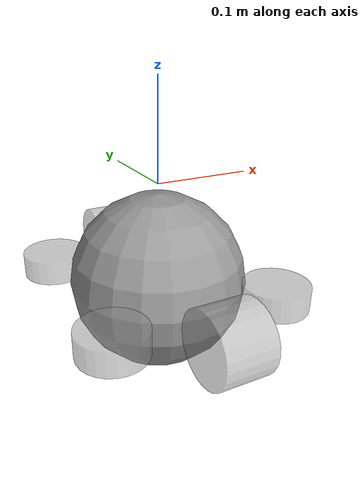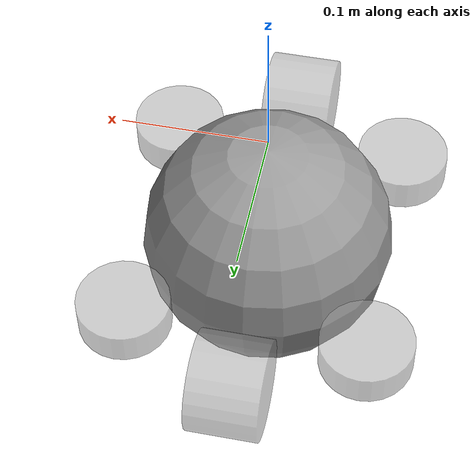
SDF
<?xml version="1.0" ?>
<sdf version='1.6'>
  <world name='default'>
    <light name='sun' type='directional'>
      <cast_shadows>1</cast_shadows>
      <pose frame=''>0 0 10 0 -0 0</pose>
      <diffuse>0.8 0.8 0.8 1</diffuse>
      <specular>0.2 0.2 0.2 1</specular>
      <attenuation>
        <range>1000</range>
        <constant>0.9</constant>
        <linear>0.01</linear>
        <quadratic>0.001</quadratic>
      </attenuation>
      <direction>-0.5 0.1 -0.9</direction>
    </light>
    <gravity>0 0 -9.8</gravity>
    <magnetic_field>6e-06 2.3e-05 -4.2e-05</magnetic_field>
    <atmosphere type='adiabatic'/>
    <physics name='default_physics' default='0' type='ode'>
      <max_step_size>0.001</max_step_size>
      <real_time_factor>1</real_time_factor>
      <real_time_update_rate>1000</real_time_update_rate>
    </physics>
    <scene>
      <ambient>0.4 0.4 0.4 1</ambient>
      <background>0.7 0.7 0.7 1</background>
      <shadows>1</shadows>
    </scene>
    <wind/>
    <spherical_coordinates>
      <surface_model>EARTH_WGS84</surface_model>
      <latitude_deg>0</latitude_deg>
      <longitude_deg>0</longitude_deg>
      <elevation>0</elevation>
      <heading_deg>0</heading_deg>
    </spherical_coordinates>
    <include>
      <uri>model://MickBot</uri>
      <pose>0 0 -0.1 0 0 0</pose>
    </include>
  </world>
</sdf>

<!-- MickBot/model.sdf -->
<sdf version='1.6'>
  <model name='MickBot'>
    <link name='body'>
      <inertial>
        <mass>3.05363</mass>
        <inertia>
          <ixx>0.00989375</ixx>
          <ixy>0</ixy>
          <ixz>0</ixz>
          <iyy>0.00989375</iyy>
          <iyz>0</iyz>
          <izz>0.00989375</izz>
        </inertia>
        <pose frame=''>0 0 0 0 -0 0</pose>
      </inertial>
      <pose frame=''>0 0 0 0 -0 0</pose>
      <gravity>1</gravity>
      <self_collide>0</self_collide>
      <kinematic>0</kinematic>
      <enable_wind>0</enable_wind>
      <sensor name='imu_sensor' type='imu'>
        <pose frame=''>0 0 0 0 -0 0</pose>
        <always_on>1</always_on>
        <update_rate>1000</update_rate>
        <imu/>
      </sensor>
      <visual name='body'>
        <pose frame=''>0 0 0 0 -0 0</pose>
        <geometry>
          <sphere>
            <radius>0.09</radius>
          </sphere>
        </geometry>
        <material>
          <lighting>1</lighting>
          <script>
            <uri>file://media/materials/scripts/gazebo.material</uri>
            <name>Gazebo/Grey</name>
          </script>
          <shader type='pixel'>
            <normal_map>__default__</normal_map>
          </shader>
          <ambient>0.3 0.3 0.3 1</ambient>
          <diffuse>0.7 0.7 0.7 1</diffuse>
          <specular>0.01 0.01 0.01 1</specular>
          <emissive>0 0 0 1</emissive>
        </material>
        <transparency>0</transparency>
        <cast_shadows>1</cast_shadows>
      </visual>
      <collision name='body'>
        <laser_retro>0</laser_retro>
        <max_contacts>10</max_contacts>
        <pose frame=''>0 0 0 0 -0 0</pose>
        <geometry>
          <sphere>
            <radius>0.09</radius>
          </sphere>
        </geometry>
        <surface>
          <friction>
            <ode>
              <mu>1</mu>
              <mu2>1</mu2>
              <fdir1>0 0 0</fdir1>
              <slip1>0</slip1>
              <slip2>0</slip2>
            </ode>
            <torsional>
              <coefficient>1</coefficient>
              <patch_radius>0</patch_radius>
              <surface_radius>0</surface_radius>
              <use_patch_radius>1</use_patch_radius>
              <ode>
                <slip>0</slip>
              </ode>
            </torsional>
          </friction>
          <bounce>
            <restitution_coefficient>0</restitution_coefficient>
            <threshold>1e+06</threshold>
          </bounce>
          <contact>
            <collide_without_contact>0</collide_without_contact>
            <collide_without_contact_bitmask>1</collide_without_contact_bitmask>
            <collide_bitmask>1</collide_bitmask>
            <ode>
              <soft_cfm>0</soft_cfm>
              <soft_erp>0.2</soft_erp>
              <kp>1e+13</kp>
              <kd>1</kd>
              <max_vel>0.01</max_vel>
              <min_depth>0</min_depth>
            </ode>
            <bullet>
              <split_impulse>1</split_impulse>
              <split_impulse_penetration_threshold>-0.01</split_impulse_penetration_threshold>
              <soft_cfm>0</soft_cfm>
              <soft_erp>0.2</soft_erp>
              <kp>1e+13</kp>
              <kd>1</kd>
            </bullet>
          </contact>
        </surface>
      </collision>
    </link>
    <link name='front_left_vertical_motor'>
      <self_collide>0</self_collide>
      <inertial>
        <pose frame=''>0 0 0 0 -0 0</pose>
        <inertia>
          <ixx>2.774e-05</ixx>
          <ixy>0</ixy>
          <ixz>0</ixz>
          <iyy>2.774e-05</iyy>
          <iyz>0</iyz>
          <izz>4.657e-05</izz>
        </inertia>
        <mass>0.0855299</mass>
      </inertial>
      <enable_wind>0</enable_wind>
      <kinematic>0</kinematic>
      <pose frame=''>0.085 0.085 0 0 -0 0</pose>
      <gravity>1</gravity>
      <visual name='front_left_vertical_motor'>
        <pose frame=''>0 0 0 0 -0 0</pose>
        <geometry>
          <cylinder>
            <radius>0.033</radius>
            <length>0.025</length>
          </cylinder>
        </geometry>
        <material>
          <lighting>1</lighting>
          <script>
            <uri>file://media/materials/scripts/gazebo.material</uri>
            <name>Gazebo/Grey</name>
          </script>
          <shader type='pixel'>
            <normal_map>__default__</normal_map>
          </shader>
          <ambient>0.3 0.3 0.3 1</ambient>
          <diffuse>0.7 0.7 0.7 1</diffuse>
          <specular>0.01 0.01 0.01 1</specular>
          <emissive>0 0 0 1</emissive>
        </material>
        <transparency>0.5</transparency>
        <cast_shadows>1</cast_shadows>
      </visual>
      <collision name='front_left_vertical_motor'>
        <laser_retro>0</laser_retro>
        <max_contacts>10</max_contacts>
        <pose frame=''>0 0 0 0 -0 0</pose>
        <geometry>
          <cylinder>
            <radius>0.033</radius>
            <length>0.025</length>
          </cylinder>
        </geometry>
        <surface>
          <friction>
            <ode>
              <mu>1</mu>
              <mu2>1</mu2>
              <fdir1>0 0 0</fdir1>
              <slip1>0</slip1>
              <slip2>0</slip2>
            </ode>
            <torsional>
              <coefficient>1</coefficient>
              <patch_radius>0</patch_radius>
              <surface_radius>0</surface_radius>
              <use_patch_radius>1</use_patch_radius>
              <ode>
                <slip>0</slip>
              </ode>
            </torsional>
          </friction>
          <bounce>
            <restitution_coefficient>0</restitution_coefficient>
            <threshold>1e+06</threshold>
          </bounce>
          <contact>
            <collide_without_contact>0</collide_without_contact>
            <collide_without_contact_bitmask>1</collide_without_contact_bitmask>
            <collide_bitmask>1</collide_bitmask>
            <ode>
              <soft_cfm>0</soft_cfm>
              <soft_erp>0.2</soft_erp>
              <kp>1e+13</kp>
              <kd>1</kd>
              <max_vel>0.01</max_vel>
              <min_depth>0</min_depth>
            </ode>
            <bullet>
              <split_impulse>1</split_impulse>
              <split_impulse_penetration_threshold>-0.01</split_impulse_penetration_threshold>
              <soft_cfm>0</soft_cfm>
              <soft_erp>0.2</soft_erp>
              <kp>1e+13</kp>
              <kd>1</kd>
            </bullet>
          </contact>
        </surface>
      </collision>
    </link>
    <link name='front_right_vertical_motor'>
      <self_collide>0</self_collide>
      <inertial>
        <pose frame=''>0 0 0 0 -0 0</pose>
        <inertia>
          <ixx>2.774e-05</ixx>
          <ixy>0</ixy>
          <ixz>0</ixz>
          <iyy>2.774e-05</iyy>
          <iyz>0</iyz>
          <izz>4.657e-05</izz>
        </inertia>
        <mass>0.0855299</mass>
      </inertial>
      <enable_wind>0</enable_wind>
      <kinematic>0</kinematic>
      <pose frame=''>0.085 -0.085 0 0 -0 0</pose>
      <gravity>1</gravity>
      <visual name='front_right_vertical_motor'>
        <pose frame=''>0 0 0 0 -0 0</pose>
        <geometry>
          <cylinder>
            <radius>0.033</radius>
            <length>0.025</length>
          </cylinder>
        </geometry>
        <material>
          <lighting>1</lighting>
          <script>
            <uri>file://media/materials/scripts/gazebo.material</uri>
            <name>Gazebo/Grey</name>
          </script>
          <shader type='pixel'>
            <normal_map>__default__</normal_map>
          </shader>
          <ambient>0.3 0.3 0.3 1</ambient>
          <diffuse>0.7 0.7 0.7 1</diffuse>
          <specular>0.01 0.01 0.01 1</specular>
          <emissive>0 0 0 1</emissive>
        </material>
        <transparency>0.5</transparency>
        <cast_shadows>1</cast_shadows>
      </visual>
      <collision name='front_right_vertical_motor'>
        <laser_retro>0</laser_retro>
        <max_contacts>10</max_contacts>
        <pose frame=''>0 0 0 0 -0 0</pose>
        <geometry>
          <cylinder>
            <radius>0.033</radius>
            <length>0.025</length>
          </cylinder>
        </geometry>
        <surface>
          <friction>
            <ode>
              <mu>1</mu>
              <mu2>1</mu2>
              <fdir1>0 0 0</fdir1>
              <slip1>0</slip1>
              <slip2>0</slip2>
            </ode>
            <torsional>
              <coefficient>1</coefficient>
              <patch_radius>0</patch_radius>
              <surface_radius>0</surface_radius>
              <use_patch_radius>1</use_patch_radius>
              <ode>
                <slip>0</slip>
              </ode>
            </torsional>
          </friction>
          <bounce>
            <restitution_coefficient>0</restitution_coefficient>
            <threshold>1e+06</threshold>
          </bounce>
          <contact>
            <collide_without_contact>0</collide_without_contact>
            <collide_without_contact_bitmask>1</collide_without_contact_bitmask>
            <collide_bitmask>1</collide_bitmask>
            <ode>
              <soft_cfm>0</soft_cfm>
              <soft_erp>0.2</soft_erp>
              <kp>1e+13</kp>
              <kd>1</kd>
              <max_vel>0.01</max_vel>
              <min_depth>0</min_depth>
            </ode>
            <bullet>
              <split_impulse>1</split_impulse>
              <split_impulse_penetration_threshold>-0.01</split_impulse_penetration_threshold>
              <soft_cfm>0</soft_cfm>
              <soft_erp>0.2</soft_erp>
              <kp>1e+13</kp>
              <kd>1</kd>
            </bullet>
          </contact>
        </surface>
      </collision>
    </link>
    <link name='left_horizontal_motor'>
      <self_collide>0</self_collide>
      <inertial>
        <pose frame=''>0 0 0 0 -0 0</pose>
        <inertia>
          <ixx>9.902e-05</ixx>
          <ixy>0</ixy>
          <ixz>0</ixz>
          <iyy>9.902e-05</iyy>
          <iyz>0</iyz>
          <izz>0.00011786</izz>
        </inertia>
        <mass>0.192423</mass>
      </inertial>
      <enable_wind>0</enable_wind>
      <kinematic>0</kinematic>
      <pose frame=''>0 0.13 0 0 1.57079 0</pose>
      <gravity>1</gravity>
      <visual name='left_horizontal_motor'>
        <pose frame=''>0 0 0 0 -0 0</pose>
        <geometry>
          <cylinder>
            <radius>0.035</radius>
            <length>0.05</length>
          </cylinder>
        </geometry>
        <material>
          <lighting>1</lighting>
          <script>
            <uri>file://media/materials/scripts/gazebo.material</uri>
            <name>Gazebo/Grey</name>
          </script>
          <shader type='pixel'>
            <normal_map>__default__</normal_map>
          </shader>
          <ambient>0.3 0.3 0.3 1</ambient>
          <diffuse>0.7 0.7 0.7 1</diffuse>
          <specular>0.01 0.01 0.01 1</specular>
          <emissive>0 0 0 1</emissive>
        </material>
        <transparency>0.5</transparency>
        <cast_shadows>1</cast_shadows>
      </visual>
      <collision name='left_horizontal_motor'>
        <laser_retro>0</laser_retro>
        <max_contacts>10</max_contacts>
        <pose frame=''>0 0 0 0 -0 0</pose>
        <geometry>
          <cylinder>
            <radius>0.035</radius>
            <length>0.05</length>
          </cylinder>
        </geometry>
        <surface>
          <friction>
            <ode>
              <mu>1</mu>
              <mu2>1</mu2>
              <fdir1>0 0 0</fdir1>
              <slip1>0</slip1>
              <slip2>0</slip2>
            </ode>
            <torsional>
              <coefficient>1</coefficient>
              <patch_radius>0</patch_radius>
              <surface_radius>0</surface_radius>
              <use_patch_radius>1</use_patch_radius>
              <ode>
                <slip>0</slip>
              </ode>
            </torsional>
          </friction>
          <bounce>
            <restitution_coefficient>0</restitution_coefficient>
            <threshold>1e+06</threshold>
          </bounce>
          <contact>
            <collide_without_contact>0</collide_without_contact>
            <collide_without_contact_bitmask>1</collide_without_contact_bitmask>
            <collide_bitmask>1</collide_bitmask>
            <ode>
              <soft_cfm>0</soft_cfm>
              <soft_erp>0.2</soft_erp>
              <kp>1e+13</kp>
              <kd>1</kd>
              <max_vel>0.01</max_vel>
              <min_depth>0</min_depth>
            </ode>
            <bullet>
              <split_impulse>1</split_impulse>
              <split_impulse_penetration_threshold>-0.01</split_impulse_penetration_threshold>
              <soft_cfm>0</soft_cfm>
              <soft_erp>0.2</soft_erp>
              <kp>1e+13</kp>
              <kd>1</kd>
            </bullet>
          </contact>
        </surface>
      </collision>
    </link>
    <link name='rear_left_vertical_motor'>
      <self_collide>0</self_collide>
      <inertial>
        <pose frame=''>0 0 0 0 -0 0</pose>
        <inertia>
          <ixx>2.774e-05</ixx>
          <ixy>0</ixy>
          <ixz>0</ixz>
          <iyy>2.774e-05</iyy>
          <iyz>0</iyz>
          <izz>4.657e-05</izz>
        </inertia>
        <mass>0.0855299</mass>
      </inertial>
      <enable_wind>0</enable_wind>
      <kinematic>0</kinematic>
      <pose frame=''>-0.085 0.085 0 0 -0 0</pose>
      <gravity>1</gravity>
      <visual name='rear_left_vertical_motor'>
        <pose frame=''>0 0 0 0 -0 0</pose>
        <geometry>
          <cylinder>
            <radius>0.033</radius>
            <length>0.025</length>
          </cylinder>
        </geometry>
        <material>
          <lighting>1</lighting>
          <script>
            <uri>file://media/materials/scripts/gazebo.material</uri>
            <name>Gazebo/Grey</name>
          </script>
          <shader type='pixel'>
            <normal_map>__default__</normal_map>
          </shader>
          <ambient>0.3 0.3 0.3 1</ambient>
          <diffuse>0.7 0.7 0.7 1</diffuse>
          <specular>0.01 0.01 0.01 1</specular>
          <emissive>0 0 0 1</emissive>
        </material>
        <transparency>0.5</transparency>
        <cast_shadows>1</cast_shadows>
      </visual>
      <collision name='rear_left_vertical_motor'>
        <laser_retro>0</laser_retro>
        <max_contacts>10</max_contacts>
        <pose frame=''>0 0 0 0 -0 0</pose>
        <geometry>
          <cylinder>
            <radius>0.033</radius>
            <length>0.025</length>
          </cylinder>
        </geometry>
        <surface>
          <friction>
            <ode>
              <mu>1</mu>
              <mu2>1</mu2>
              <fdir1>0 0 0</fdir1>
              <slip1>0</slip1>
              <slip2>0</slip2>
            </ode>
            <torsional>
              <coefficient>1</coefficient>
              <patch_radius>0</patch_radius>
              <surface_radius>0</surface_radius>
              <use_patch_radius>1</use_patch_radius>
              <ode>
                <slip>0</slip>
              </ode>
            </torsional>
          </friction>
          <bounce>
            <restitution_coefficient>0</restitution_coefficient>
            <threshold>1e+06</threshold>
          </bounce>
          <contact>
            <collide_without_contact>0</collide_without_contact>
            <collide_without_contact_bitmask>1</collide_without_contact_bitmask>
            <collide_bitmask>1</collide_bitmask>
            <ode>
              <soft_cfm>0</soft_cfm>
              <soft_erp>0.2</soft_erp>
              <kp>1e+13</kp>
              <kd>1</kd>
              <max_vel>0.01</max_vel>
              <min_depth>0</min_depth>
            </ode>
            <bullet>
              <split_impulse>1</split_impulse>
              <split_impulse_penetration_threshold>-0.01</split_impulse_penetration_threshold>
              <soft_cfm>0</soft_cfm>
              <soft_erp>0.2</soft_erp>
              <kp>1e+13</kp>
              <kd>1</kd>
            </bullet>
          </contact>
        </surface>
      </collision>
    </link>
    <link name='rear_right_vertical_motor'>
      <self_collide>0</self_collide>
      <inertial>
        <pose frame=''>0 0 0 0 -0 0</pose>
        <inertia>
          <ixx>2.774e-05</ixx>
          <ixy>0</ixy>
          <ixz>0</ixz>
          <iyy>2.774e-05</iyy>
          <iyz>0</iyz>
          <izz>4.657e-05</izz>
        </inertia>
        <mass>0.0855299</mass>
      </inertial>
      <enable_wind>0</enable_wind>
      <kinematic>0</kinematic>
      <pose frame=''>-0.085 -0.085 0 0 -0 0</pose>
      <gravity>1</gravity>
      <visual name='rear_right_vertical_motor'>
        <pose frame=''>0 0 0 0 -0 0</pose>
        <geometry>
          <cylinder>
            <radius>0.033</radius>
            <length>0.025</length>
          </cylinder>
        </geometry>
        <material>
          <lighting>1</lighting>
          <script>
            <uri>file://media/materials/scripts/gazebo.material</uri>
            <name>Gazebo/Grey</name>
          </script>
          <shader type='pixel'>
            <normal_map>__default__</normal_map>
          </shader>
          <ambient>0.3 0.3 0.3 1</ambient>
          <diffuse>0.7 0.7 0.7 1</diffuse>
          <specular>0.01 0.01 0.01 1</specular>
          <emissive>0 0 0 1</emissive>
        </material>
        <transparency>0.5</transparency>
        <cast_shadows>1</cast_shadows>
      </visual>
      <collision name='rear_right_vertical_motor'>
        <laser_retro>0</laser_retro>
        <max_contacts>10</max_contacts>
        <pose frame=''>0 0 0 0 -0 0</pose>
        <geometry>
          <cylinder>
            <radius>0.033</radius>
            <length>0.025</length>
          </cylinder>
        </geometry>
        <surface>
          <friction>
            <ode>
              <mu>1</mu>
              <mu2>1</mu2>
              <fdir1>0 0 0</fdir1>
              <slip1>0</slip1>
              <slip2>0</slip2>
            </ode>
            <torsional>
              <coefficient>1</coefficient>
              <patch_radius>0</patch_radius>
              <surface_radius>0</surface_radius>
              <use_patch_radius>1</use_patch_radius>
              <ode>
                <slip>0</slip>
              </ode>
            </torsional>
          </friction>
          <bounce>
            <restitution_coefficient>0</restitution_coefficient>
            <threshold>1e+06</threshold>
          </bounce>
          <contact>
            <collide_without_contact>0</collide_without_contact>
            <collide_without_contact_bitmask>1</collide_without_contact_bitmask>
            <collide_bitmask>1</collide_bitmask>
            <ode>
              <soft_cfm>0</soft_cfm>
              <soft_erp>0.2</soft_erp>
              <kp>1e+13</kp>
              <kd>1</kd>
              <max_vel>0.01</max_vel>
              <min_depth>0</min_depth>
            </ode>
            <bullet>
              <split_impulse>1</split_impulse>
              <split_impulse_penetration_threshold>-0.01</split_impulse_penetration_threshold>
              <soft_cfm>0</soft_cfm>
              <soft_erp>0.2</soft_erp>
              <kp>1e+13</kp>
              <kd>1</kd>
            </bullet>
          </contact>
        </surface>
      </collision>
    </link>
    <link name='rear_right_vertical_rotor'>
      <self_collide>0</self_collide>
      <inertial>
        <pose frame=''>0 0 0 0 -0 0</pose>
        <inertia>
          <ixx>2.774e-05</ixx>
          <ixy>0</ixy>
          <ixz>0</ixz>
          <iyy>2.774e-05</iyy>
          <iyz>0</iyz>
          <izz>4.657e-05</izz>
        </inertia>
        <mass>0.02827433</mass>
      </inertial>
      <enable_wind>0</enable_wind>
      <kinematic>0</kinematic>
      <pose frame=''>-0.085 -0.085 0.005 0 -0 0</pose>
      <gravity>1</gravity>
      <visual name='rear_right_vertical_motor'>
        <pose frame=''>0 0 0 0 -0 0</pose>
        <geometry>
          <cylinder>
            <radius>0.03</radius>
            <length>0.01</length>
          </cylinder>
        </geometry>
        <material>
          <lighting>1</lighting>
          <script>
            <uri>file://media/materials/scripts/gazebo.material</uri>
            <name>Gazebo/Grey</name>
          </script>
          <shader type='pixel'>
            <normal_map>__default__</normal_map>
          </shader>
          <ambient>0.3 0.3 0.3 1</ambient>
          <diffuse>0.7 0.7 0.7 1</diffuse>
          <specular>0.01 0.01 0.01 1</specular>
          <emissive>0 0 0 1</emissive>
        </material>
        <transparency>0.5</transparency>
        <cast_shadows>1</cast_shadows>
      </visual>
    </link>
    <link name='rear_left_vertical_rotor'>
      <self_collide>0</self_collide>
      <inertial>
        <pose frame=''>0 0 0 0 -0 0</pose>
        <inertia>
          <ixx>2.774e-05</ixx>
          <ixy>0</ixy>
          <ixz>0</ixz>
          <iyy>2.774e-05</iyy>
          <iyz>0</iyz>
          <izz>4.657e-05</izz>
        </inertia>
        <mass>0.02827433</mass>
      </inertial>
      <enable_wind>0</enable_wind>
      <kinematic>0</kinematic>
      <pose frame=''>-0.085 0.085 0.005 0 -0 0</pose>
      <gravity>1</gravity>
      <visual name='rear_right_vertical_motor'>
        <pose frame=''>0 0 0 0 -0 0</pose>
        <geometry>
          <cylinder>
            <radius>0.03</radius>
            <length>0.01</length>
          </cylinder>
        </geometry>
        <material>
          <lighting>1</lighting>
          <script>
            <uri>file://media/materials/scripts/gazebo.material</uri>
            <name>Gazebo/Grey</name>
          </script>
          <shader type='pixel'>
            <normal_map>__default__</normal_map>
          </shader>
          <ambient>0.3 0.3 0.3 1</ambient>
          <diffuse>0.7 0.7 0.7 1</diffuse>
          <specular>0.01 0.01 0.01 1</specular>
          <emissive>0 0 0 1</emissive>
        </material>
        <transparency>0.5</transparency>
        <cast_shadows>1</cast_shadows>
      </visual>
    </link>
    <link name='front_left_vertical_rotor'>
      <self_collide>0</self_collide>
      <inertial>
        <pose frame=''>0 0 0 0 -0 0</pose>
        <inertia>
          <ixx>2.774e-05</ixx>
          <ixy>0</ixy>
          <ixz>0</ixz>
          <iyy>2.774e-05</iyy>
          <iyz>0</iyz>
          <izz>4.657e-05</izz>
        </inertia>
        <mass>0.02827433</mass>
      </inertial>
      <enable_wind>0</enable_wind>
      <kinematic>0</kinematic>
      <pose frame=''>0.085 0.085 0.005 0 -0 0</pose>
      <gravity>1</gravity>
      <visual name='rear_right_vertical_motor'>
        <pose frame=''>0 0 0 0 -0 0</pose>
        <geometry>
          <cylinder>
            <radius>0.03</radius>
            <length>0.01</length>
          </cylinder>
        </geometry>
        <material>
          <lighting>1</lighting>
          <script>
            <uri>file://media/materials/scripts/gazebo.material</uri>
            <name>Gazebo/Grey</name>
          </script>
          <shader type='pixel'>
            <normal_map>__default__</normal_map>
          </shader>
          <ambient>0.3 0.3 0.3 1</ambient>
          <diffuse>0.7 0.7 0.7 1</diffuse>
          <specular>0.01 0.01 0.01 1</specular>
          <emissive>0 0 0 1</emissive>
        </material>
        <transparency>0.5</transparency>
        <cast_shadows>1</cast_shadows>
      </visual>
    </link>
    <link name='front_right_vertical_rotor'>
      <self_collide>0</self_collide>
      <inertial>
        <pose frame=''>0 0 0 0 -0 0</pose>
        <inertia>
          <ixx>0</ixx>
          <ixy>0</ixy>
          <ixz>0</ixz>
          <iyy>0</iyy>
          <iyz>0</iyz>
          <izz>0</izz>
        </inertia>
        <mass>0.02827433</mass>
      </inertial>
      <enable_wind>0</enable_wind>
      <kinematic>0</kinematic>
      <pose frame=''>0.085 -0.085 0.005 0 -0 0</pose>
      <gravity>1</gravity>
      <visual name='rear_right_vertical_motor'>
        <pose frame=''>0 0 0 0 -0 0</pose>
        <geometry>
          <cylinder>
            <radius>0.03</radius>
            <length>0.01</length>
          </cylinder>
        </geometry>
        <material>
          <lighting>1</lighting>
          <script>
            <uri>file://media/materials/scripts/gazebo.material</uri>
            <name>Gazebo/Grey</name>
          </script>
          <shader type='pixel'>
            <normal_map>__default__</normal_map>
          </shader>
          <ambient>0.3 0.3 0.3 1</ambient>
          <diffuse>0.7 0.7 0.7 1</diffuse>
          <specular>0.01 0.01 0.01 1</specular>
          <emissive>0 0 0 1</emissive>
        </material>
        <transparency>0.5</transparency>
        <cast_shadows>1</cast_shadows>
      </visual>
    </link>
    <link name='right_horizontal_motor'>
      <self_collide>0</self_collide>
      <inertial>
        <pose frame=''>0 0 0 0 -0 0</pose>
        <inertia>
          <ixx>9.902e-05</ixx>
          <ixy>0</ixy>
          <ixz>0</ixz>
          <iyy>9.902e-05</iyy>
          <iyz>0</iyz>
          <izz>0.00011786</izz>
        </inertia>
        <mass>0.192423</mass>
      </inertial>
      <enable_wind>0</enable_wind>
      <kinematic>0</kinematic>
      <pose frame=''>0 -0.13 0 0 1.57079 0</pose>
      <gravity>1</gravity>
      <visual name='right_horizontal_motor'>
        <pose frame=''>0 0 0 0 -0 0</pose>
        <geometry>
          <cylinder>
            <radius>0.035</radius>
            <length>0.05</length>
          </cylinder>
        </geometry>
        <material>
          <lighting>1</lighting>
          <script>
            <uri>file://media/materials/scripts/gazebo.material</uri>
            <name>Gazebo/Grey</name>
          </script>
          <shader type='pixel'>
            <normal_map>__default__</normal_map>
          </shader>
          <ambient>0.3 0.3 0.3 1</ambient>
          <diffuse>0.7 0.7 0.7 1</diffuse>
          <specular>0.01 0.01 0.01 1</specular>
          <emissive>0 0 0 1</emissive>
        </material>
        <transparency>0.5</transparency>
        <cast_shadows>1</cast_shadows>
      </visual>
      <collision name='right_horizontal_motor'>
        <laser_retro>0</laser_retro>
        <max_contacts>10</max_contacts>
        <pose frame=''>0 0 0 0 -0 0</pose>
        <geometry>
          <cylinder>
            <radius>0.035</radius>
            <length>0.05</length>
          </cylinder>
        </geometry>
        <surface>
          <friction>
            <ode>
              <mu>1</mu>
              <mu2>1</mu2>
              <fdir1>0 0 0</fdir1>
              <slip1>0</slip1>
              <slip2>0</slip2>
            </ode>
            <torsional>
              <coefficient>1</coefficient>
              <patch_radius>0</patch_radius>
              <surface_radius>0</surface_radius>
              <use_patch_radius>1</use_patch_radius>
              <ode>
                <slip>0</slip>
              </ode>
            </torsional>
          </friction>
          <bounce>
            <restitution_coefficient>0</restitution_coefficient>
            <threshold>1e+06</threshold>
          </bounce>
          <contact>
            <collide_without_contact>0</collide_without_contact>
            <collide_without_contact_bitmask>1</collide_without_contact_bitmask>
            <collide_bitmask>1</collide_bitmask>
            <ode>
              <soft_cfm>0</soft_cfm>
              <soft_erp>0.2</soft_erp>
              <kp>1e+13</kp>
              <kd>1</kd>
              <max_vel>0.01</max_vel>
              <min_depth>0</min_depth>
            </ode>
            <bullet>
              <split_impulse>1</split_impulse>
              <split_impulse_penetration_threshold>-0.01</split_impulse_penetration_threshold>
              <soft_cfm>0</soft_cfm>
              <soft_erp>0.2</soft_erp>
              <kp>1e+13</kp>
              <kd>1</kd>
            </bullet>
          </contact>
        </surface>
      </collision>
    </link>
    <link name='right_horizontal_rotor'>
      <self_collide>0</self_collide>
      <inertial>
        <pose frame=''>0 0 0 0 -0 0</pose>
        <inertia>
          <ixx>9.902e-05</ixx>
          <ixy>0</ixy>
          <ixz>0</ixz>
          <iyy>9.902e-05</iyy>
          <iyz>0</iyz>
          <izz>0.00011786</izz>
        </inertia>
        <mass>0.02827433</mass>
      </inertial>
      <enable_wind>0</enable_wind>
      <kinematic>0</kinematic>
      <pose frame=''>-0.015 -0.13 0 0 1.57079 0</pose>
      <gravity>1</gravity>
      <visual name='right_horizontal_motor'>
        <pose frame=''>0 0 0 0 -0 0</pose>
        <geometry>
          <cylinder>
            <radius>0.03</radius>
            <length>0.01</length>
          </cylinder>
        </geometry>
        <material>
          <lighting>1</lighting>
          <script>
            <uri>file://media/materials/scripts/gazebo.material</uri>
            <name>Gazebo/Grey</name>
          </script>
          <shader type='pixel'>
            <normal_map>__default__</normal_map>
          </shader>
          <ambient>0.3 0.3 0.3 1</ambient>
          <diffuse>0.7 0.7 0.7 1</diffuse>
          <specular>0.01 0.01 0.01 1</specular>
          <emissive>0 0 0 1</emissive>
        </material>
        <transparency>0.5</transparency>
        <cast_shadows>1</cast_shadows>
      </visual>
    </link>
    <link name='left_horizontal_rotor'>
      <self_collide>0</self_collide>
      <inertial>
        <pose frame=''>0 0 0 0 -0 0</pose>
        <inertia>
          <ixx>9.902e-05</ixx>
          <ixy>0</ixy>
          <ixz>0</ixz>
          <iyy>9.902e-05</iyy>
          <iyz>0</iyz>
          <izz>0.00011786</izz>
        </inertia>
        <mass>0.02827433</mass>
      </inertial>
      <enable_wind>0</enable_wind>
      <kinematic>0</kinematic>
      <pose frame=''>-0.015 0.13 0 0 1.57079 0</pose>
      <gravity>1</gravity>
      <visual name='right_horizontal_motor'>
        <pose frame=''>0 0 0 0 -0 0</pose>
        <geometry>
          <cylinder>
            <radius>0.03</radius>
            <length>0.01</length>
          </cylinder>
        </geometry>
        <material>
          <lighting>1</lighting>
          <script>
            <uri>file://media/materials/scripts/gazebo.material</uri>
            <name>Gazebo/Grey</name>
          </script>
          <shader type='pixel'>
            <normal_map>__default__</normal_map>
          </shader>
          <ambient>0.3 0.3 0.3 1</ambient>
          <diffuse>0.7 0.7 0.7 1</diffuse>
          <specular>0.01 0.01 0.01 1</specular>
          <emissive>0 0 0 1</emissive>
        </material>
        <transparency>0.5</transparency>
        <cast_shadows>1</cast_shadows>
      </visual>
    </link>
    <joint name='front_left_joint' type='fixed'>
      <parent>body</parent>
      <child>front_left_vertical_motor</child>
      <pose frame=''>0 0 0 0 -0 0</pose>
      <physics>
        <ode>
          <limit>
            <cfm>0</cfm>
            <erp>0.2</erp>
          </limit>
          <suspension>
            <cfm>0</cfm>
            <erp>0.2</erp>
          </suspension>
        </ode>
      </physics>
    </joint>
    <joint name='front_left_vertical_motor_joint' type='fixed'>
      <parent>front_left_vertical_motor</parent>
      <child>front_left_vertical_rotor</child>
      <pose frame=''>0 0 0 0 -0 0</pose>
      <physics>
        <ode>
          <limit>
            <cfm>0</cfm>
            <erp>0.2</erp>
          </limit>
          <suspension>
            <cfm>0</cfm>
            <erp>0.2</erp>
          </suspension>
        </ode>
      </physics>
    </joint>
    <joint name='front_right_joint' type='fixed'>
      <parent>body</parent>
      <child>front_right_vertical_motor</child>
      <pose frame=''>0 0 0 0 -0 0</pose>
      <physics>
        <ode>
          <limit>
            <cfm>0</cfm>
            <erp>0.2</erp>
          </limit>
          <suspension>
            <cfm>0</cfm>
            <erp>0.2</erp>
          </suspension>
        </ode>
      </physics>
    </joint>
    <joint name='front_right_vertical_motor_joint' type='fixed'>
      <parent>front_right_vertical_motor</parent>
      <child>front_right_vertical_rotor</child>
      <pose frame=''>0 0 0 0 -0 0</pose>
      <physics>
        <ode>
          <limit>
            <cfm>0</cfm>
            <erp>0.2</erp>
          </limit>
          <suspension>
            <cfm>0</cfm>
            <erp>0.2</erp>
          </suspension>
        </ode>
      </physics>
    </joint>
    <joint name='left_horizontal_motor_joint' type='fixed'>
      <parent>left_horizontal_motor</parent>
      <child>left_horizontal_rotor</child>
      <pose frame=''>0 0 0 0 -0 0</pose>
      <physics>
        <ode>
          <limit>
            <cfm>0</cfm>
            <erp>0.2</erp>
          </limit>
          <suspension>
            <cfm>0</cfm>
            <erp>0.2</erp>
          </suspension>
        </ode>
      </physics>
    </joint>
    <joint name='left_joint' type='fixed'>
      <parent>body</parent>
      <child>left_horizontal_motor</child>
      <pose frame=''>0 0 0 0 -0 0</pose>
      <physics>
        <ode>
          <limit>
            <cfm>0</cfm>
            <erp>0.2</erp>
          </limit>
          <suspension>
            <cfm>0</cfm>
            <erp>0.2</erp>
          </suspension>
        </ode>
      </physics>
    </joint>
    <joint name='rear_left_joint' type='fixed'>
      <parent>body</parent>
      <child>rear_left_vertical_motor</child>
      <pose frame=''>0 0 0 0 -0 0</pose>
      <physics>
        <ode>
          <limit>
            <cfm>0</cfm>
            <erp>0.2</erp>
          </limit>
          <suspension>
            <cfm>0</cfm>
            <erp>0.2</erp>
          </suspension>
        </ode>
      </physics>
    </joint>
    <joint name='rear_left_vertical_motor_joint' type='fixed'>
      <parent>rear_left_vertical_motor</parent>
      <child>rear_left_vertical_rotor</child>
      <pose frame=''>0 0 0 0 -0 0</pose>
      <physics>
        <ode>
          <limit>
            <cfm>0</cfm>
            <erp>0.2</erp>
          </limit>
          <suspension>
            <cfm>0</cfm>
            <erp>0.2</erp>
          </suspension>
        </ode>
      </physics>
    </joint>
    <joint name='rear_right_joint' type='fixed'>
      <parent>body</parent>
      <child>rear_right_vertical_motor</child>
      <pose frame=''>0 0 0 0 -0 0</pose>
      <physics>
        <ode>
          <limit>
            <cfm>0</cfm>
            <erp>0.2</erp>
          </limit>
          <suspension>
            <cfm>0</cfm>
            <erp>0.2</erp>
          </suspension>
        </ode>
      </physics>
    </joint>
    <joint name='rear_right_vertical_motor_joint' type='fixed'>
      <parent>rear_right_vertical_motor</parent>
      <child>rear_right_vertical_rotor</child>
      <pose frame=''>0 0 0 0 -0 0</pose>
      <physics>
        <ode>
          <limit>
            <cfm>0</cfm>
            <erp>0.2</erp>
          </limit>
          <suspension>
            <cfm>0</cfm>
            <erp>0.2</erp>
          </suspension>
        </ode>
      </physics>
    </joint>
    <joint name='right_horizontal_motor_joint' type='fixed'>
      <parent>right_horizontal_motor</parent>
      <child>right_horizontal_rotor</child>
      <pose frame=''>0 0 0 0 -0 0</pose>
      <physics>
        <ode>
          <limit>
            <cfm>0</cfm>
            <erp>0.2</erp>
          </limit>
          <suspension>
            <cfm>0</cfm>
            <erp>0.2</erp>
          </suspension>
        </ode>
      </physics>
    </joint>
    <joint name='right_joint' type='fixed'>
      <parent>body</parent>
      <child>right_horizontal_motor</child>
      <pose frame=''>0 0 0 0 -0 0</pose>
      <physics>
        <ode>
          <limit>
            <cfm>0</cfm>
            <erp>0.2</erp>
          </limit>
          <suspension>
            <cfm>0</cfm>
            <erp>0.2</erp>
          </suspension>
        </ode>
      </physics>
    </joint>
    <static>0</static>
    <allow_auto_disable>1</allow_auto_disable>
    <plugin name='ArduPilotPlugin' filename='libArduPilotPlugin.so'>
      <fdm_addr>127.0.0.1</fdm_addr>
      <fdm_port_in>9002</fdm_port_in>
      <fdm_port_out>9003</fdm_port_out>
      <imuName>MickBot::body::imu_sensor</imuName>
      <connectionTimeoutMaxCount>5</connectionTimeoutMaxCount>
      <control channel='0'>
        <type>EFFORT</type>
        <offset>-0.5</offset>
        <p_gain>1</p_gain>
        <i_gain>0</i_gain>
        <d_gain>0</d_gain>
        <i_max>0</i_max>
        <i_min>0</i_min>
        <cmd_max>51</cmd_max>
        <cmd_min>-40</cmd_min>
        <jointName>MickBot::right_horizontal_motor_joint</jointName>
        <multiplier>102</multiplier>
      </control>
      <control channel='1'>
        <type>EFFORT</type>
        <offset>-0.5</offset>
        <p_gain>1</p_gain>
        <i_gain>0</i_gain>
        <d_gain>0</d_gain>
        <i_max>0</i_max>
        <i_min>0</i_min>
        <cmd_max>51</cmd_max>
        <cmd_min>-40</cmd_min>
        <jointName>MickBot::left_horizontal_motor_joint</jointName>
        <multiplier>102</multiplier>
      </control>
      <control channel='2'>
        <type>EFFORT</type>
        <offset>-0.5</offset>
        <p_gain>1</p_gain>
        <i_gain>0</i_gain>
        <d_gain>0</d_gain>
        <i_max>0</i_max>
        <i_min>0</i_min>
        <cmd_max>51</cmd_max>
        <cmd_min>-40</cmd_min>
        <jointName>MickBot::front_right_vertical_motor_joint</jointName>
        <multiplier>102</multiplier>
      </control>
      <control channel='3'>
        <type>EFFORT</type>
        <offset>-0.5</offset>
        <p_gain>1</p_gain>
        <i_gain>0</i_gain>
        <d_gain>0</d_gain>
        <i_max>0</i_max>
        <i_min>0</i_min>
        <cmd_max>51</cmd_max>
        <cmd_min>-40</cmd_min>
        <jointName>MickBot::front_left_vertical_motor_joint</jointName>
        <multiplier>102</multiplier>
      </control>
      <control channel='4'>
        <type>EFFORT</type>
        <offset>-0.5</offset>
        <p_gain>1</p_gain>
        <i_gain>0</i_gain>
        <d_gain>0</d_gain>
        <i_max>0</i_max>
        <i_min>0</i_min>
        <cmd_max>51</cmd_max>
        <cmd_min>-40</cmd_min>
        <jointName>MickBot::rear_right_vertical_motor_joint</jointName>
        <multiplier>102</multiplier>
      </control>
      <control channel='5'>
        <type>EFFORT</type>
        <offset>-0.5</offset>
        <p_gain>1</p_gain>
        <i_gain>0</i_gain>
        <d_gain>0</d_gain>
        <i_max>0</i_max>
        <i_min>0</i_min>
        <cmd_max>51</cmd_max>
        <cmd_min>-40</cmd_min>
        <jointName>MickBot::rear_left_vertical_motor_joint</jointName>
        <multiplier>102</multiplier>
      </control>
    </plugin>
    <plugin name='freebuoyancy_gazebo' filename='libfreebuoyancy_gazebo.so'>
      <descriptionParam>robot_description</descriptionParam>
      <fluidTopic>current</fluidTopic>
      <alwaysOn>1</alwaysOn>
      <surface>0 0 0</surface>
      <updateRate>.001</updateRate>
      <fluid_density>1000</fluid_density>
      <link name='body'>
        <buoyancy>
          <compensation>1.2935</compensation>
          <origin xyz='0 0 0'/>
        </buoyancy>
      </link>
      <link name='left_horizontal_motor'>
        <buoyancy>
          <compensation>1</compensation>
          <origin xyz='0 0 0'/>
        </buoyancy>
      </link>
      <link name='right_horizontal_motor'>
        <buoyancy>
          <compensation>1</compensation>
          <origin xyz='0 0 0'/>
        </buoyancy>
      </link>
      <link name='rear_right_vertical_motor'>
        <buoyancy>
          <compensation>1</compensation>
          <origin xyz='0 0 0'/>
        </buoyancy>
      </link>
      <link name='rear_left_vertical_motor'>
        <buoyancy>
          <compensation>1</compensation>
          <origin xyz='0 0 0'/>
        </buoyancy>
      </link>
      <link name='front_right_vertical_motor'>
        <buoyancy>
          <compensation>1</compensation>
          <origin xyz='0 0 0'/>
        </buoyancy>
      </link>
      <link name='front_left_vertical_motor'>
        <buoyancy>
          <compensation>1</compensation>
          <origin xyz='0 0 0'/>
        </buoyancy>
      </link>
    </plugin>
  </model>
</sdf>
